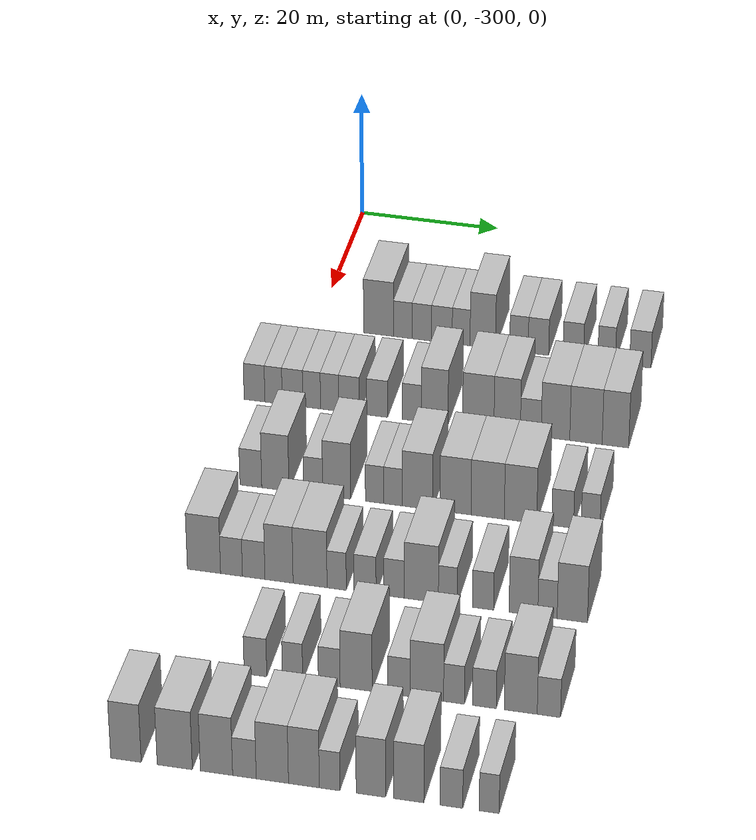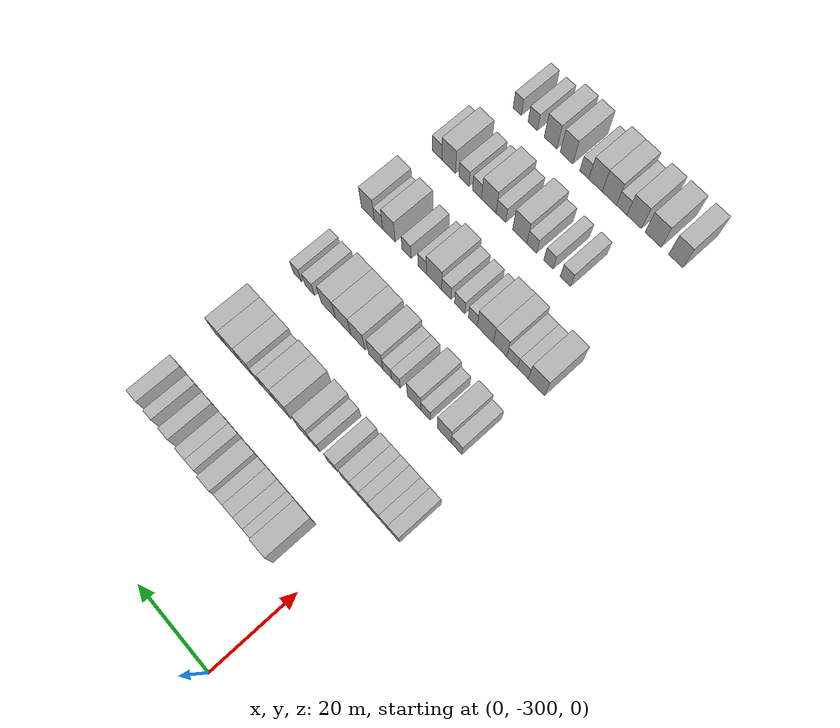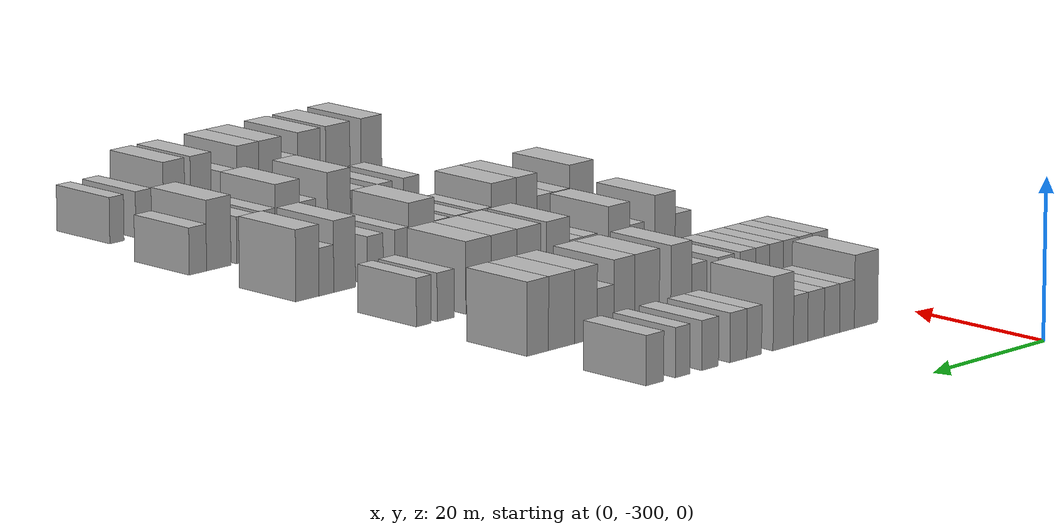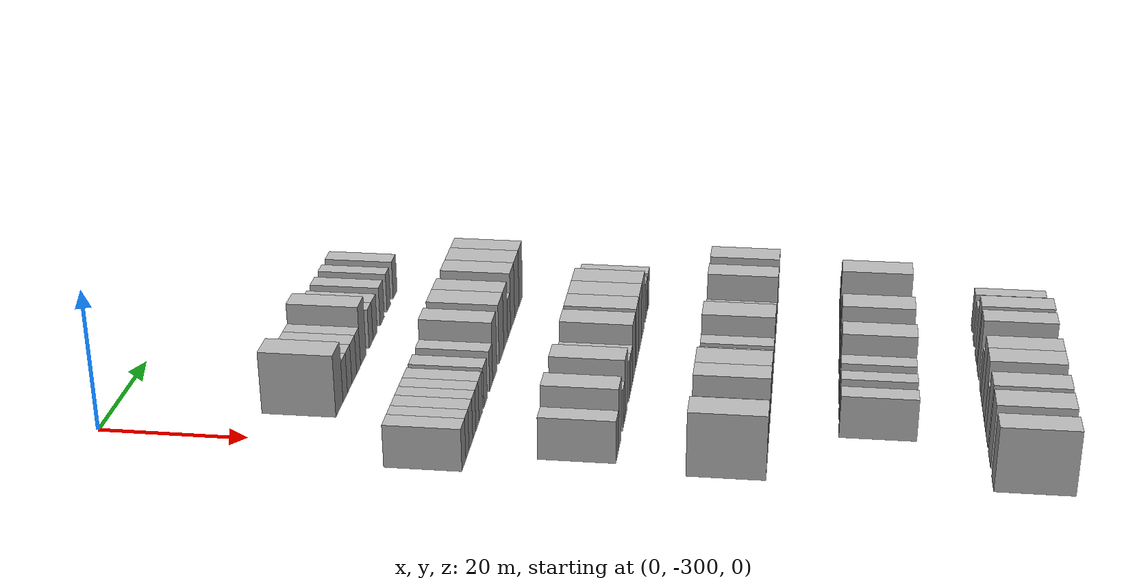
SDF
<sdf version="1.6">
 <world name="default">
  <model name="building_11">
   <static>1</static>
   <pose>25.0000 -291.0103 0 0.000000 0.000000 0.000000</pose>
   <link name="link">
    <pose>0 0 4.50 0 0 0</pose>
    <collision name="collision"><geometry><box><size>10.0000 4.2477 9.0000</size></box></geometry></collision>
    <visual name="visual">
     <cast_shadows>0</cast_shadows>
     <geometry><box><size>10.0000 4.2477 9.0000</size></box></geometry>
     <material>
      <script>
       <uri>model://HANNAS_wall/materials/scripts</uri>
       <uri>model://HANNAS_wall/materials/textures</uri>
       <name>vrc/HANNAS_wall</name>
      </script>
     </material>
    </visual>
   </link>
  </model>
  <model name="building_12">
   <static>1</static>
   <pose>25.0000 -287.5518 0 0.000000 0.000000 0.000000</pose>
   <link name="link">
    <pose>0 0 3.00 0 0 0</pose>
    <collision name="collision"><geometry><box><size>10.0000 2.6692 6.0000</size></box></geometry></collision>
    <visual name="visual">
     <cast_shadows>0</cast_shadows>
     <geometry><box><size>10.0000 2.6692 6.0000</size></box></geometry>
     <material>
      <script>
       <uri>model://HANNAS_wall/materials/scripts</uri>
       <uri>model://HANNAS_wall/materials/textures</uri>
       <name>vrc/HANNAS_wall</name>
      </script>
     </material>
    </visual>
   </link>
  </model>
  <model name="building_13">
   <static>1</static>
   <pose>25.0000 -284.8402 0 0.000000 0.000000 0.000000</pose>
   <link name="link">
    <pose>0 0 3.00 0 0 0</pose>
    <collision name="collision"><geometry><box><size>10.0000 2.7540 6.0000</size></box></geometry></collision>
    <visual name="visual">
     <cast_shadows>0</cast_shadows>
     <geometry><box><size>10.0000 2.7540 6.0000</size></box></geometry>
     <material>
      <script>
       <uri>model://HANNAS_wall/materials/scripts</uri>
       <uri>model://HANNAS_wall/materials/textures</uri>
       <name>vrc/HANNAS_wall</name>
      </script>
     </material>
    </visual>
   </link>
  </model>
  <model name="building_14">
   <static>1</static>
   <pose>25.0000 -281.9950 0 0.000000 0.000000 0.000000</pose>
   <link name="link">
    <pose>0 0 3.00 0 0 0</pose>
    <collision name="collision"><geometry><box><size>10.0000 2.9364 6.0000</size></box></geometry></collision>
    <visual name="visual">
     <cast_shadows>0</cast_shadows>
     <geometry><box><size>10.0000 2.9364 6.0000</size></box></geometry>
     <material>
      <script>
       <uri>model://HANNAS_wall/materials/scripts</uri>
       <uri>model://HANNAS_wall/materials/textures</uri>
       <name>vrc/HANNAS_wall</name>
      </script>
     </material>
    </visual>
   </link>
  </model>
  <model name="building_15">
   <static>1</static>
   <pose>25.0000 -279.2619 0 0.000000 0.000000 0.000000</pose>
   <link name="link">
    <pose>0 0 3.00 0 0 0</pose>
    <collision name="collision"><geometry><box><size>10.0000 2.5298 6.0000</size></box></geometry></collision>
    <visual name="visual">
     <cast_shadows>0</cast_shadows>
     <geometry><box><size>10.0000 2.5298 6.0000</size></box></geometry>
     <material>
      <script>
       <uri>model://HANNAS_wall/materials/scripts</uri>
       <uri>model://HANNAS_wall/materials/textures</uri>
       <name>vrc/HANNAS_wall</name>
      </script>
     </material>
    </visual>
   </link>
  </model>
  <model name="building_16">
   <static>1</static>
   <pose>25.0000 -276.1931 0 0.000000 0.000000 0.000000</pose>
   <link name="link">
    <pose>0 0 4.50 0 0 0</pose>
    <collision name="collision"><geometry><box><size>10.0000 3.6077 9.0000</size></box></geometry></collision>
    <visual name="visual">
     <cast_shadows>0</cast_shadows>
     <geometry><box><size>10.0000 3.6077 9.0000</size></box></geometry>
     <material>
      <script>
       <uri>model://HANNAS_wall/materials/scripts</uri>
       <uri>model://HANNAS_wall/materials/textures</uri>
       <name>vrc/HANNAS_wall</name>
      </script>
     </material>
    </visual>
   </link>
  </model>
  <model name="building_17">
   <static>1</static>
   <pose>25.0000 -271.0863 0 0.000000 0.000000 0.000000</pose>
   <link name="link">
    <pose>0 0 3.00 0 0 0</pose>
    <collision name="collision"><geometry><box><size>10.0000 2.6060 6.0000</size></box></geometry></collision>
    <visual name="visual">
     <cast_shadows>0</cast_shadows>
     <geometry><box><size>10.0000 2.6060 6.0000</size></box></geometry>
     <material>
      <script>
       <uri>model://HANNAS_wall/materials/scripts</uri>
       <uri>model://HANNAS_wall/materials/textures</uri>
       <name>vrc/HANNAS_wall</name>
      </script>
     </material>
    </visual>
   </link>
  </model>
  <model name="building_18">
   <static>1</static>
   <pose>25.0000 -268.3383 0 0.000000 0.000000 0.000000</pose>
   <link name="link">
    <pose>0 0 3.00 0 0 0</pose>
    <collision name="collision"><geometry><box><size>10.0000 2.8900 6.0000</size></box></geometry></collision>
    <visual name="visual">
     <cast_shadows>0</cast_shadows>
     <geometry><box><size>10.0000 2.8900 6.0000</size></box></geometry>
     <material>
      <script>
       <uri>model://HANNAS_wall/materials/scripts</uri>
       <uri>model://HANNAS_wall/materials/textures</uri>
       <name>vrc/HANNAS_wall</name>
      </script>
     </material>
    </visual>
   </link>
  </model>
  <model name="building_19">
   <static>1</static>
   <pose>25.0000 -263.4455 0 0.000000 0.000000 0.000000</pose>
   <link name="link">
    <pose>0 0 3.00 0 0 0</pose>
    <collision name="collision"><geometry><box><size>10.0000 2.8955 6.0000</size></box></geometry></collision>
    <visual name="visual">
     <cast_shadows>0</cast_shadows>
     <geometry><box><size>10.0000 2.8955 6.0000</size></box></geometry>
     <material>
      <script>
       <uri>model://HANNAS_wall/materials/scripts</uri>
       <uri>model://HANNAS_wall/materials/textures</uri>
       <name>vrc/HANNAS_wall</name>
      </script>
     </material>
    </visual>
   </link>
  </model>
  <model name="building_20">
   <static>1</static>
   <pose>25.0000 -258.7673 0 0.000000 0.000000 0.000000</pose>
   <link name="link">
    <pose>0 0 3.00 0 0 0</pose>
    <collision name="collision"><geometry><box><size>10.0000 2.4609 6.0000</size></box></geometry></collision>
    <visual name="visual">
     <cast_shadows>0</cast_shadows>
     <geometry><box><size>10.0000 2.4609 6.0000</size></box></geometry>
     <material>
      <script>
       <uri>model://HANNAS_wall/materials/scripts</uri>
       <uri>model://HANNAS_wall/materials/textures</uri>
       <name>vrc/HANNAS_wall</name>
      </script>
     </material>
    </visual>
   </link>
  </model>
  <model name="building_21">
   <static>1</static>
   <pose>25.0000 -254.0529 0 0.000000 0.000000 0.000000</pose>
   <link name="link">
    <pose>0 0 3.00 0 0 0</pose>
    <collision name="collision"><geometry><box><size>10.0000 2.9681 6.0000</size></box></geometry></collision>
    <visual name="visual">
     <cast_shadows>0</cast_shadows>
     <geometry><box><size>10.0000 2.9681 6.0000</size></box></geometry>
     <material>
      <script>
       <uri>model://HANNAS_wall/materials/scripts</uri>
       <uri>model://HANNAS_wall/materials/textures</uri>
       <name>vrc/HANNAS_wall</name>
      </script>
     </material>
    </visual>
   </link>
  </model>
  <model name="building_180">
   <static>1</static>
   <pose>44.0000 -304.1042 0 0.000000 0.000000 0.000000</pose>
   <link name="link">
    <pose>0 0 3.00 0 0 0</pose>
    <collision name="collision"><geometry><box><size>10.0000 2.9142 6.0000</size></box></geometry></collision>
    <visual name="visual">
     <cast_shadows>0</cast_shadows>
     <geometry><box><size>10.0000 2.9142 6.0000</size></box></geometry>
     <material>
      <script>
       <uri>model://HANNAS_wall/materials/scripts</uri>
       <uri>model://HANNAS_wall/materials/textures</uri>
       <name>vrc/HANNAS_wall</name>
      </script>
     </material>
    </visual>
   </link>
  </model>
  <model name="building_181">
   <static>1</static>
   <pose>44.0000 -301.4362 0 0.000000 0.000000 0.000000</pose>
   <link name="link">
    <pose>0 0 3.00 0 0 0</pose>
    <collision name="collision"><geometry><box><size>10.0000 2.4218 6.0000</size></box></geometry></collision>
    <visual name="visual">
     <cast_shadows>0</cast_shadows>
     <geometry><box><size>10.0000 2.4218 6.0000</size></box></geometry>
     <material>
      <script>
       <uri>model://HANNAS_wall/materials/scripts</uri>
       <uri>model://HANNAS_wall/materials/textures</uri>
       <name>vrc/HANNAS_wall</name>
      </script>
     </material>
    </visual>
   </link>
  </model>
  <model name="building_182">
   <static>1</static>
   <pose>44.0000 -298.7825 0 0.000000 0.000000 0.000000</pose>
   <link name="link">
    <pose>0 0 3.00 0 0 0</pose>
    <collision name="collision"><geometry><box><size>10.0000 2.8854 6.0000</size></box></geometry></collision>
    <visual name="visual">
     <cast_shadows>0</cast_shadows>
     <geometry><box><size>10.0000 2.8854 6.0000</size></box></geometry>
     <material>
      <script>
       <uri>model://HANNAS_wall/materials/scripts</uri>
       <uri>model://HANNAS_wall/materials/textures</uri>
       <name>vrc/HANNAS_wall</name>
      </script>
     </material>
    </visual>
   </link>
  </model>
  <model name="building_183">
   <static>1</static>
   <pose>44.0000 -296.1023 0 0.000000 0.000000 0.000000</pose>
   <link name="link">
    <pose>0 0 3.00 0 0 0</pose>
    <collision name="collision"><geometry><box><size>10.0000 2.4749 6.0000</size></box></geometry></collision>
    <visual name="visual">
     <cast_shadows>0</cast_shadows>
     <geometry><box><size>10.0000 2.4749 6.0000</size></box></geometry>
     <material>
      <script>
       <uri>model://HANNAS_wall/materials/scripts</uri>
       <uri>model://HANNAS_wall/materials/textures</uri>
       <name>vrc/HANNAS_wall</name>
      </script>
     </material>
    </visual>
   </link>
  </model>
  <model name="building_184">
   <static>1</static>
   <pose>44.0000 -293.5985 0 0.000000 0.000000 0.000000</pose>
   <link name="link">
    <pose>0 0 3.00 0 0 0</pose>
    <collision name="collision"><geometry><box><size>10.0000 2.5328 6.0000</size></box></geometry></collision>
    <visual name="visual">
     <cast_shadows>0</cast_shadows>
     <geometry><box><size>10.0000 2.5328 6.0000</size></box></geometry>
     <material>
      <script>
       <uri>model://HANNAS_wall/materials/scripts</uri>
       <uri>model://HANNAS_wall/materials/textures</uri>
       <name>vrc/HANNAS_wall</name>
      </script>
     </material>
    </visual>
   </link>
  </model>
  <model name="building_185">
   <static>1</static>
   <pose>44.0000 -290.8913 0 0.000000 0.000000 0.000000</pose>
   <link name="link">
    <pose>0 0 3.00 0 0 0</pose>
    <collision name="collision"><geometry><box><size>10.0000 2.8815 6.0000</size></box></geometry></collision>
    <visual name="visual">
     <cast_shadows>0</cast_shadows>
     <geometry><box><size>10.0000 2.8815 6.0000</size></box></geometry>
     <material>
      <script>
       <uri>model://HANNAS_wall/materials/scripts</uri>
       <uri>model://HANNAS_wall/materials/textures</uri>
       <name>vrc/HANNAS_wall</name>
      </script>
     </material>
    </visual>
   </link>
  </model>
  <model name="building_186">
   <static>1</static>
   <pose>44.0000 -286.9854 0 0.000000 0.000000 0.000000</pose>
   <link name="link">
    <pose>0 0 3.00 0 0 0</pose>
    <collision name="collision"><geometry><box><size>10.0000 2.9305 6.0000</size></box></geometry></collision>
    <visual name="visual">
     <cast_shadows>0</cast_shadows>
     <geometry><box><size>10.0000 2.9305 6.0000</size></box></geometry>
     <material>
      <script>
       <uri>model://HANNAS_wall/materials/scripts</uri>
       <uri>model://HANNAS_wall/materials/textures</uri>
       <name>vrc/HANNAS_wall</name>
      </script>
     </material>
    </visual>
   </link>
  </model>
  <model name="building_187">
   <static>1</static>
   <pose>44.0000 -282.1990 0 0.000000 0.000000 0.000000</pose>
   <link name="link">
    <pose>0 0 3.00 0 0 0</pose>
    <collision name="collision"><geometry><box><size>10.0000 2.6423 6.0000</size></box></geometry></collision>
    <visual name="visual">
     <cast_shadows>0</cast_shadows>
     <geometry><box><size>10.0000 2.6423 6.0000</size></box></geometry>
     <material>
      <script>
       <uri>model://HANNAS_wall/materials/scripts</uri>
       <uri>model://HANNAS_wall/materials/textures</uri>
       <name>vrc/HANNAS_wall</name>
      </script>
     </material>
    </visual>
   </link>
  </model>
  <model name="building_188">
   <static>1</static>
   <pose>44.0000 -279.0256 0 0.000000 0.000000 0.000000</pose>
   <link name="link">
    <pose>0 0 4.50 0 0 0</pose>
    <collision name="collision"><geometry><box><size>10.0000 3.7047 9.0000</size></box></geometry></collision>
    <visual name="visual">
     <cast_shadows>0</cast_shadows>
     <geometry><box><size>10.0000 3.7047 9.0000</size></box></geometry>
     <material>
      <script>
       <uri>model://HANNAS_wall/materials/scripts</uri>
       <uri>model://HANNAS_wall/materials/textures</uri>
       <name>vrc/HANNAS_wall</name>
      </script>
     </material>
    </visual>
   </link>
  </model>
  <model name="building_189">
   <static>1</static>
   <pose>44.0000 -273.0197 0 0.000000 0.000000 0.000000</pose>
   <link name="link">
    <pose>0 0 4.50 0 0 0</pose>
    <collision name="collision"><geometry><box><size>10.0000 4.3072 9.0000</size></box></geometry></collision>
    <visual name="visual">
     <cast_shadows>0</cast_shadows>
     <geometry><box><size>10.0000 4.3072 9.0000</size></box></geometry>
     <material>
      <script>
       <uri>model://HANNAS_wall/materials/scripts</uri>
       <uri>model://HANNAS_wall/materials/textures</uri>
       <name>vrc/HANNAS_wall</name>
      </script>
     </material>
    </visual>
   </link>
  </model>
  <model name="building_190">
   <static>1</static>
   <pose>44.0000 -269.0513 0 0.000000 0.000000 0.000000</pose>
   <link name="link">
    <pose>0 0 4.50 0 0 0</pose>
    <collision name="collision"><geometry><box><size>10.0000 3.6296 9.0000</size></box></geometry></collision>
    <visual name="visual">
     <cast_shadows>0</cast_shadows>
     <geometry><box><size>10.0000 3.6296 9.0000</size></box></geometry>
     <material>
      <script>
       <uri>model://HANNAS_wall/materials/scripts</uri>
       <uri>model://HANNAS_wall/materials/textures</uri>
       <name>vrc/HANNAS_wall</name>
      </script>
     </material>
    </visual>
   </link>
  </model>
  <model name="building_191">
   <static>1</static>
   <pose>44.0000 -265.8133 0 0.000000 0.000000 0.000000</pose>
   <link name="link">
    <pose>0 0 3.00 0 0 0</pose>
    <collision name="collision"><geometry><box><size>10.0000 2.8464 6.0000</size></box></geometry></collision>
    <visual name="visual">
     <cast_shadows>0</cast_shadows>
     <geometry><box><size>10.0000 2.8464 6.0000</size></box></geometry>
     <material>
      <script>
       <uri>model://HANNAS_wall/materials/scripts</uri>
       <uri>model://HANNAS_wall/materials/textures</uri>
       <name>vrc/HANNAS_wall</name>
      </script>
     </material>
    </visual>
   </link>
  </model>
  <model name="building_192">
   <static>1</static>
   <pose>44.0000 -262.4368 0 0.000000 0.000000 0.000000</pose>
   <link name="link">
    <pose>0 0 4.50 0 0 0</pose>
    <collision name="collision"><geometry><box><size>10.0000 3.9066 9.0000</size></box></geometry></collision>
    <visual name="visual">
     <cast_shadows>0</cast_shadows>
     <geometry><box><size>10.0000 3.9066 9.0000</size></box></geometry>
     <material>
      <script>
       <uri>model://HANNAS_wall/materials/scripts</uri>
       <uri>model://HANNAS_wall/materials/textures</uri>
       <name>vrc/HANNAS_wall</name>
      </script>
     </material>
    </visual>
   </link>
  </model>
  <model name="building_193">
   <static>1</static>
   <pose>44.0000 -258.2757 0 0.000000 0.000000 0.000000</pose>
   <link name="link">
    <pose>0 0 4.50 0 0 0</pose>
    <collision name="collision"><geometry><box><size>10.0000 4.4156 9.0000</size></box></geometry></collision>
    <visual name="visual">
     <cast_shadows>0</cast_shadows>
     <geometry><box><size>10.0000 4.4156 9.0000</size></box></geometry>
     <material>
      <script>
       <uri>model://HANNAS_wall/materials/scripts</uri>
       <uri>model://HANNAS_wall/materials/textures</uri>
       <name>vrc/HANNAS_wall</name>
      </script>
     </material>
    </visual>
   </link>
  </model>
  <model name="building_194">
   <static>1</static>
   <pose>44.0000 -254.2604 0 0.000000 0.000000 0.000000</pose>
   <link name="link">
    <pose>0 0 4.50 0 0 0</pose>
    <collision name="collision"><geometry><box><size>10.0000 3.6151 9.0000</size></box></geometry></collision>
    <visual name="visual">
     <cast_shadows>0</cast_shadows>
     <geometry><box><size>10.0000 3.6151 9.0000</size></box></geometry>
     <material>
      <script>
       <uri>model://HANNAS_wall/materials/scripts</uri>
       <uri>model://HANNAS_wall/materials/textures</uri>
       <name>vrc/HANNAS_wall</name>
      </script>
     </material>
    </visual>
   </link>
  </model>
  <model name="building_359">
   <static>1</static>
   <pose>63.0000 -299.8979 0 0.000000 0.000000 0.000000</pose>
   <link name="link">
    <pose>0 0 3.00 0 0 0</pose>
    <collision name="collision"><geometry><box><size>10.0000 2.9735 6.0000</size></box></geometry></collision>
    <visual name="visual">
     <cast_shadows>0</cast_shadows>
     <geometry><box><size>10.0000 2.9735 6.0000</size></box></geometry>
     <material>
      <script>
       <uri>model://HANNAS_wall/materials/scripts</uri>
       <uri>model://HANNAS_wall/materials/textures</uri>
       <name>vrc/HANNAS_wall</name>
      </script>
     </material>
    </visual>
   </link>
  </model>
  <model name="building_360">
   <static>1</static>
   <pose>63.0000 -296.5601 0 0.000000 0.000000 0.000000</pose>
   <link name="link">
    <pose>0 0 4.50 0 0 0</pose>
    <collision name="collision"><geometry><box><size>10.0000 3.7020 9.0000</size></box></geometry></collision>
    <visual name="visual">
     <cast_shadows>0</cast_shadows>
     <geometry><box><size>10.0000 3.7020 9.0000</size></box></geometry>
     <material>
      <script>
       <uri>model://HANNAS_wall/materials/scripts</uri>
       <uri>model://HANNAS_wall/materials/textures</uri>
       <name>vrc/HANNAS_wall</name>
      </script>
     </material>
    </visual>
   </link>
  </model>
  <model name="building_361">
   <static>1</static>
   <pose>63.0000 -291.4200 0 0.000000 0.000000 0.000000</pose>
   <link name="link">
    <pose>0 0 3.00 0 0 0</pose>
    <collision name="collision"><geometry><box><size>10.0000 2.5783 6.0000</size></box></geometry></collision>
    <visual name="visual">
     <cast_shadows>0</cast_shadows>
     <geometry><box><size>10.0000 2.5783 6.0000</size></box></geometry>
     <material>
      <script>
       <uri>model://HANNAS_wall/materials/scripts</uri>
       <uri>model://HANNAS_wall/materials/textures</uri>
       <name>vrc/HANNAS_wall</name>
      </script>
     </material>
    </visual>
   </link>
  </model>
  <model name="building_362">
   <static>1</static>
   <pose>63.0000 -288.2430 0 0.000000 0.000000 0.000000</pose>
   <link name="link">
    <pose>0 0 4.50 0 0 0</pose>
    <collision name="collision"><geometry><box><size>10.0000 3.7756 9.0000</size></box></geometry></collision>
    <visual name="visual">
     <cast_shadows>0</cast_shadows>
     <geometry><box><size>10.0000 3.7756 9.0000</size></box></geometry>
     <material>
      <script>
       <uri>model://HANNAS_wall/materials/scripts</uri>
       <uri>model://HANNAS_wall/materials/textures</uri>
       <name>vrc/HANNAS_wall</name>
      </script>
     </material>
    </visual>
   </link>
  </model>
  <model name="building_363">
   <static>1</static>
   <pose>63.0000 -283.1217 0 0.000000 0.000000 0.000000</pose>
   <link name="link">
    <pose>0 0 3.00 0 0 0</pose>
    <collision name="collision"><geometry><box><size>10.0000 2.4671 6.0000</size></box></geometry></collision>
    <visual name="visual">
     <cast_shadows>0</cast_shadows>
     <geometry><box><size>10.0000 2.4671 6.0000</size></box></geometry>
     <material>
      <script>
       <uri>model://HANNAS_wall/materials/scripts</uri>
       <uri>model://HANNAS_wall/materials/textures</uri>
       <name>vrc/HANNAS_wall</name>
      </script>
     </material>
    </visual>
   </link>
  </model>
  <model name="building_364">
   <static>1</static>
   <pose>63.0000 -280.6571 0 0.000000 0.000000 0.000000</pose>
   <link name="link">
    <pose>0 0 3.00 0 0 0</pose>
    <collision name="collision"><geometry><box><size>10.0000 2.4621 6.0000</size></box></geometry></collision>
    <visual name="visual">
     <cast_shadows>0</cast_shadows>
     <geometry><box><size>10.0000 2.4621 6.0000</size></box></geometry>
     <material>
      <script>
       <uri>model://HANNAS_wall/materials/scripts</uri>
       <uri>model://HANNAS_wall/materials/textures</uri>
       <name>vrc/HANNAS_wall</name>
      </script>
     </material>
    </visual>
   </link>
  </model>
  <model name="building_365">
   <static>1</static>
   <pose>63.0000 -277.3743 0 0.000000 0.000000 0.000000</pose>
   <link name="link">
    <pose>0 0 4.50 0 0 0</pose>
    <collision name="collision"><geometry><box><size>10.0000 4.1034 9.0000</size></box></geometry></collision>
    <visual name="visual">
     <cast_shadows>0</cast_shadows>
     <geometry><box><size>10.0000 4.1034 9.0000</size></box></geometry>
     <material>
      <script>
       <uri>model://HANNAS_wall/materials/scripts</uri>
       <uri>model://HANNAS_wall/materials/textures</uri>
       <name>vrc/HANNAS_wall</name>
      </script>
     </material>
    </visual>
   </link>
  </model>
  <model name="building_366">
   <static>1</static>
   <pose>63.0000 -272.2488 0 0.000000 0.000000 0.000000</pose>
   <link name="link">
    <pose>0 0 4.50 0 0 0</pose>
    <collision name="collision"><geometry><box><size>10.0000 4.1475 9.0000</size></box></geometry></collision>
    <visual name="visual">
     <cast_shadows>0</cast_shadows>
     <geometry><box><size>10.0000 4.1475 9.0000</size></box></geometry>
     <material>
      <script>
       <uri>model://HANNAS_wall/materials/scripts</uri>
       <uri>model://HANNAS_wall/materials/textures</uri>
       <name>vrc/HANNAS_wall</name>
      </script>
     </material>
    </visual>
   </link>
  </model>
  <model name="building_367">
   <static>1</static>
   <pose>63.0000 -267.9529 0 0.000000 0.000000 0.000000</pose>
   <link name="link">
    <pose>0 0 4.50 0 0 0</pose>
    <collision name="collision"><geometry><box><size>10.0000 4.4445 9.0000</size></box></geometry></collision>
    <visual name="visual">
     <cast_shadows>0</cast_shadows>
     <geometry><box><size>10.0000 4.4445 9.0000</size></box></geometry>
     <material>
      <script>
       <uri>model://HANNAS_wall/materials/scripts</uri>
       <uri>model://HANNAS_wall/materials/textures</uri>
       <name>vrc/HANNAS_wall</name>
      </script>
     </material>
    </visual>
   </link>
  </model>
  <model name="building_368">
   <static>1</static>
   <pose>63.0000 -263.5720 0 0.000000 0.000000 0.000000</pose>
   <link name="link">
    <pose>0 0 4.50 0 0 0</pose>
    <collision name="collision"><geometry><box><size>10.0000 4.3172 9.0000</size></box></geometry></collision>
    <visual name="visual">
     <cast_shadows>0</cast_shadows>
     <geometry><box><size>10.0000 4.3172 9.0000</size></box></geometry>
     <material>
      <script>
       <uri>model://HANNAS_wall/materials/scripts</uri>
       <uri>model://HANNAS_wall/materials/textures</uri>
       <name>vrc/HANNAS_wall</name>
      </script>
     </material>
    </visual>
   </link>
  </model>
  <model name="building_369">
   <static>1</static>
   <pose>63.0000 -257.9683 0 0.000000 0.000000 0.000000</pose>
   <link name="link">
    <pose>0 0 3.00 0 0 0</pose>
    <collision name="collision"><geometry><box><size>10.0000 2.8901 6.0000</size></box></geometry></collision>
    <visual name="visual">
     <cast_shadows>0</cast_shadows>
     <geometry><box><size>10.0000 2.8901 6.0000</size></box></geometry>
     <material>
      <script>
       <uri>model://HANNAS_wall/materials/scripts</uri>
       <uri>model://HANNAS_wall/materials/textures</uri>
       <name>vrc/HANNAS_wall</name>
      </script>
     </material>
    </visual>
   </link>
  </model>
  <model name="building_370">
   <static>1</static>
   <pose>63.0000 -254.2747 0 0.000000 0.000000 0.000000</pose>
   <link name="link">
    <pose>0 0 3.00 0 0 0</pose>
    <collision name="collision"><geometry><box><size>10.0000 2.4971 6.0000</size></box></geometry></collision>
    <visual name="visual">
     <cast_shadows>0</cast_shadows>
     <geometry><box><size>10.0000 2.4971 6.0000</size></box></geometry>
     <material>
      <script>
       <uri>model://HANNAS_wall/materials/scripts</uri>
       <uri>model://HANNAS_wall/materials/textures</uri>
       <name>vrc/HANNAS_wall</name>
      </script>
     </material>
    </visual>
   </link>
  </model>
  <model name="building_532">
   <static>1</static>
   <pose>82.0000 -301.3846 0 0.000000 0.000000 0.000000</pose>
   <link name="link">
    <pose>0 0 4.50 0 0 0</pose>
    <collision name="collision"><geometry><box><size>10.0000 4.4045 9.0000</size></box></geometry></collision>
    <visual name="visual">
     <cast_shadows>0</cast_shadows>
     <geometry><box><size>10.0000 4.4045 9.0000</size></box></geometry>
     <material>
      <script>
       <uri>model://HANNAS_wall/materials/scripts</uri>
       <uri>model://HANNAS_wall/materials/textures</uri>
       <name>vrc/HANNAS_wall</name>
      </script>
     </material>
    </visual>
   </link>
  </model>
  <model name="building_533">
   <static>1</static>
   <pose>82.0000 -297.7327 0 0.000000 0.000000 0.000000</pose>
   <link name="link">
    <pose>0 0 3.00 0 0 0</pose>
    <collision name="collision"><geometry><box><size>10.0000 2.8993 6.0000</size></box></geometry></collision>
    <visual name="visual">
     <cast_shadows>0</cast_shadows>
     <geometry><box><size>10.0000 2.8993 6.0000</size></box></geometry>
     <material>
      <script>
       <uri>model://HANNAS_wall/materials/scripts</uri>
       <uri>model://HANNAS_wall/materials/textures</uri>
       <name>vrc/HANNAS_wall</name>
      </script>
     </material>
    </visual>
   </link>
  </model>
  <model name="building_534">
   <static>1</static>
   <pose>82.0000 -294.7933 0 0.000000 0.000000 0.000000</pose>
   <link name="link">
    <pose>0 0 3.00 0 0 0</pose>
    <collision name="collision"><geometry><box><size>10.0000 2.9793 6.0000</size></box></geometry></collision>
    <visual name="visual">
     <cast_shadows>0</cast_shadows>
     <geometry><box><size>10.0000 2.9793 6.0000</size></box></geometry>
     <material>
      <script>
       <uri>model://HANNAS_wall/materials/scripts</uri>
       <uri>model://HANNAS_wall/materials/textures</uri>
       <name>vrc/HANNAS_wall</name>
      </script>
     </material>
    </visual>
   </link>
  </model>
  <model name="building_535">
   <static>1</static>
   <pose>82.0000 -291.4497 0 0.000000 0.000000 0.000000</pose>
   <link name="link">
    <pose>0 0 4.50 0 0 0</pose>
    <collision name="collision"><geometry><box><size>10.0000 3.7079 9.0000</size></box></geometry></collision>
    <visual name="visual">
     <cast_shadows>0</cast_shadows>
     <geometry><box><size>10.0000 3.7079 9.0000</size></box></geometry>
     <material>
      <script>
       <uri>model://HANNAS_wall/materials/scripts</uri>
       <uri>model://HANNAS_wall/materials/textures</uri>
       <name>vrc/HANNAS_wall</name>
      </script>
     </material>
    </visual>
   </link>
  </model>
  <model name="building_536">
   <static>1</static>
   <pose>82.0000 -287.3604 0 0.000000 0.000000 0.000000</pose>
   <link name="link">
    <pose>0 0 4.50 0 0 0</pose>
    <collision name="collision"><geometry><box><size>10.0000 4.4708 9.0000</size></box></geometry></collision>
    <visual name="visual">
     <cast_shadows>0</cast_shadows>
     <geometry><box><size>10.0000 4.4708 9.0000</size></box></geometry>
     <material>
      <script>
       <uri>model://HANNAS_wall/materials/scripts</uri>
       <uri>model://HANNAS_wall/materials/textures</uri>
       <name>vrc/HANNAS_wall</name>
      </script>
     </material>
    </visual>
   </link>
  </model>
  <model name="building_537">
   <static>1</static>
   <pose>82.0000 -283.8622 0 0.000000 0.000000 0.000000</pose>
   <link name="link">
    <pose>0 0 3.00 0 0 0</pose>
    <collision name="collision"><geometry><box><size>10.0000 2.5257 6.0000</size></box></geometry></collision>
    <visual name="visual">
     <cast_shadows>0</cast_shadows>
     <geometry><box><size>10.0000 2.5257 6.0000</size></box></geometry>
     <material>
      <script>
       <uri>model://HANNAS_wall/materials/scripts</uri>
       <uri>model://HANNAS_wall/materials/textures</uri>
       <name>vrc/HANNAS_wall</name>
      </script>
     </material>
    </visual>
   </link>
  </model>
  <model name="building_538">
   <static>1</static>
   <pose>82.0000 -280.1498 0 0.000000 0.000000 0.000000</pose>
   <link name="link">
    <pose>0 0 3.00 0 0 0</pose>
    <collision name="collision"><geometry><box><size>10.0000 2.8990 6.0000</size></box></geometry></collision>
    <visual name="visual">
     <cast_shadows>0</cast_shadows>
     <geometry><box><size>10.0000 2.8990 6.0000</size></box></geometry>
     <material>
      <script>
       <uri>model://HANNAS_wall/materials/scripts</uri>
       <uri>model://HANNAS_wall/materials/textures</uri>
       <name>vrc/HANNAS_wall</name>
      </script>
     </material>
    </visual>
   </link>
  </model>
  <model name="building_539">
   <static>1</static>
   <pose>82.0000 -276.3429 0 0.000000 0.000000 0.000000</pose>
   <link name="link">
    <pose>0 0 3.00 0 0 0</pose>
    <collision name="collision"><geometry><box><size>10.0000 2.7148 6.0000</size></box></geometry></collision>
    <visual name="visual">
     <cast_shadows>0</cast_shadows>
     <geometry><box><size>10.0000 2.7148 6.0000</size></box></geometry>
     <material>
      <script>
       <uri>model://HANNAS_wall/materials/scripts</uri>
       <uri>model://HANNAS_wall/materials/textures</uri>
       <name>vrc/HANNAS_wall</name>
      </script>
     </material>
    </visual>
   </link>
  </model>
  <model name="building_540">
   <static>1</static>
   <pose>82.0000 -272.7804 0 0.000000 0.000000 0.000000</pose>
   <link name="link">
    <pose>0 0 4.50 0 0 0</pose>
    <collision name="collision"><geometry><box><size>10.0000 4.4103 9.0000</size></box></geometry></collision>
    <visual name="visual">
     <cast_shadows>0</cast_shadows>
     <geometry><box><size>10.0000 4.4103 9.0000</size></box></geometry>
     <material>
      <script>
       <uri>model://HANNAS_wall/materials/scripts</uri>
       <uri>model://HANNAS_wall/materials/textures</uri>
       <name>vrc/HANNAS_wall</name>
      </script>
     </material>
    </visual>
   </link>
  </model>
  <model name="building_541">
   <static>1</static>
   <pose>82.0000 -269.3614 0 0.000000 0.000000 0.000000</pose>
   <link name="link">
    <pose>0 0 3.00 0 0 0</pose>
    <collision name="collision"><geometry><box><size>10.0000 2.4276 6.0000</size></box></geometry></collision>
    <visual name="visual">
     <cast_shadows>0</cast_shadows>
     <geometry><box><size>10.0000 2.4276 6.0000</size></box></geometry>
     <material>
      <script>
       <uri>model://HANNAS_wall/materials/scripts</uri>
       <uri>model://HANNAS_wall/materials/textures</uri>
       <name>vrc/HANNAS_wall</name>
      </script>
     </material>
    </visual>
   </link>
  </model>
  <model name="building_542">
   <static>1</static>
   <pose>82.0000 -264.7761 0 0.000000 0.000000 0.000000</pose>
   <link name="link">
    <pose>0 0 3.00 0 0 0</pose>
    <collision name="collision"><geometry><box><size>10.0000 2.7431 6.0000</size></box></geometry></collision>
    <visual name="visual">
     <cast_shadows>0</cast_shadows>
     <geometry><box><size>10.0000 2.7431 6.0000</size></box></geometry>
     <material>
      <script>
       <uri>model://HANNAS_wall/materials/scripts</uri>
       <uri>model://HANNAS_wall/materials/textures</uri>
       <name>vrc/HANNAS_wall</name>
      </script>
     </material>
    </visual>
   </link>
  </model>
  <model name="building_543">
   <static>1</static>
   <pose>82.0000 -259.5483 0 0.000000 0.000000 0.000000</pose>
   <link name="link">
    <pose>0 0 4.50 0 0 0</pose>
    <collision name="collision"><geometry><box><size>10.0000 3.7125 9.0000</size></box></geometry></collision>
    <visual name="visual">
     <cast_shadows>0</cast_shadows>
     <geometry><box><size>10.0000 3.7125 9.0000</size></box></geometry>
     <material>
      <script>
       <uri>model://HANNAS_wall/materials/scripts</uri>
       <uri>model://HANNAS_wall/materials/textures</uri>
       <name>vrc/HANNAS_wall</name>
      </script>
     </material>
    </visual>
   </link>
  </model>
  <model name="building_544">
   <static>1</static>
   <pose>82.0000 -256.4485 0 0.000000 0.000000 0.000000</pose>
   <link name="link">
    <pose>0 0 3.00 0 0 0</pose>
    <collision name="collision"><geometry><box><size>10.0000 2.4871 6.0000</size></box></geometry></collision>
    <visual name="visual">
     <cast_shadows>0</cast_shadows>
     <geometry><box><size>10.0000 2.4871 6.0000</size></box></geometry>
     <material>
      <script>
       <uri>model://HANNAS_wall/materials/scripts</uri>
       <uri>model://HANNAS_wall/materials/textures</uri>
       <name>vrc/HANNAS_wall</name>
      </script>
     </material>
    </visual>
   </link>
  </model>
  <model name="building_545">
   <static>1</static>
   <pose>82.0000 -253.2517 0 0.000000 0.000000 0.000000</pose>
   <link name="link">
    <pose>0 0 4.50 0 0 0</pose>
    <collision name="collision"><geometry><box><size>10.0000 3.9064 9.0000</size></box></geometry></collision>
    <visual name="visual">
     <cast_shadows>0</cast_shadows>
     <geometry><box><size>10.0000 3.9064 9.0000</size></box></geometry>
     <material>
      <script>
       <uri>model://HANNAS_wall/materials/scripts</uri>
       <uri>model://HANNAS_wall/materials/textures</uri>
       <name>vrc/HANNAS_wall</name>
      </script>
     </material>
    </visual>
   </link>
  </model>
  <model name="building_688">
   <static>1</static>
   <pose>101.0000 -289.8553 0 0.000000 0.000000 0.000000</pose>
   <link name="link">
    <pose>0 0 3.00 0 0 0</pose>
    <collision name="collision"><geometry><box><size>10.0000 2.8961 6.0000</size></box></geometry></collision>
    <visual name="visual">
     <cast_shadows>0</cast_shadows>
     <geometry><box><size>10.0000 2.8961 6.0000</size></box></geometry>
     <material>
      <script>
       <uri>model://HANNAS_wall/materials/scripts</uri>
       <uri>model://HANNAS_wall/materials/textures</uri>
       <name>vrc/HANNAS_wall</name>
      </script>
     </material>
    </visual>
   </link>
  </model>
  <model name="building_689">
   <static>1</static>
   <pose>101.0000 -285.1106 0 0.000000 0.000000 0.000000</pose>
   <link name="link">
    <pose>0 0 3.00 0 0 0</pose>
    <collision name="collision"><geometry><box><size>10.0000 2.5931 6.0000</size></box></geometry></collision>
    <visual name="visual">
     <cast_shadows>0</cast_shadows>
     <geometry><box><size>10.0000 2.5931 6.0000</size></box></geometry>
     <material>
      <script>
       <uri>model://HANNAS_wall/materials/scripts</uri>
       <uri>model://HANNAS_wall/materials/textures</uri>
       <name>vrc/HANNAS_wall</name>
      </script>
     </material>
    </visual>
   </link>
  </model>
  <model name="building_690">
   <static>1</static>
   <pose>101.0000 -280.4289 0 0.000000 0.000000 0.000000</pose>
   <link name="link">
    <pose>0 0 3.00 0 0 0</pose>
    <collision name="collision"><geometry><box><size>10.0000 2.7704 6.0000</size></box></geometry></collision>
    <visual name="visual">
     <cast_shadows>0</cast_shadows>
     <geometry><box><size>10.0000 2.7704 6.0000</size></box></geometry>
     <material>
      <script>
       <uri>model://HANNAS_wall/materials/scripts</uri>
       <uri>model://HANNAS_wall/materials/textures</uri>
       <name>vrc/HANNAS_wall</name>
      </script>
     </material>
    </visual>
   </link>
  </model>
  <model name="building_691">
   <static>1</static>
   <pose>101.0000 -277.0115 0 0.000000 0.000000 0.000000</pose>
   <link name="link">
    <pose>0 0 4.50 0 0 0</pose>
    <collision name="collision"><geometry><box><size>10.0000 4.0643 9.0000</size></box></geometry></collision>
    <visual name="visual">
     <cast_shadows>0</cast_shadows>
     <geometry><box><size>10.0000 4.0643 9.0000</size></box></geometry>
     <material>
      <script>
       <uri>model://HANNAS_wall/materials/scripts</uri>
       <uri>model://HANNAS_wall/materials/textures</uri>
       <name>vrc/HANNAS_wall</name>
      </script>
     </material>
    </visual>
   </link>
  </model>
  <model name="building_692">
   <static>1</static>
   <pose>101.0000 -271.5797 0 0.000000 0.000000 0.000000</pose>
   <link name="link">
    <pose>0 0 3.00 0 0 0</pose>
    <collision name="collision"><geometry><box><size>10.0000 2.7992 6.0000</size></box></geometry></collision>
    <visual name="visual">
     <cast_shadows>0</cast_shadows>
     <geometry><box><size>10.0000 2.7992 6.0000</size></box></geometry>
     <material>
      <script>
       <uri>model://HANNAS_wall/materials/scripts</uri>
       <uri>model://HANNAS_wall/materials/textures</uri>
       <name>vrc/HANNAS_wall</name>
      </script>
     </material>
    </visual>
   </link>
  </model>
  <model name="building_693">
   <static>1</static>
   <pose>101.0000 -268.0603 0 0.000000 0.000000 0.000000</pose>
   <link name="link">
    <pose>0 0 4.50 0 0 0</pose>
    <collision name="collision"><geometry><box><size>10.0000 4.2397 9.0000</size></box></geometry></collision>
    <visual name="visual">
     <cast_shadows>0</cast_shadows>
     <geometry><box><size>10.0000 4.2397 9.0000</size></box></geometry>
     <material>
      <script>
       <uri>model://HANNAS_wall/materials/scripts</uri>
       <uri>model://HANNAS_wall/materials/textures</uri>
       <name>vrc/HANNAS_wall</name>
      </script>
     </material>
    </visual>
   </link>
  </model>
  <model name="building_694">
   <static>1</static>
   <pose>101.0000 -264.6189 0 0.000000 0.000000 0.000000</pose>
   <link name="link">
    <pose>0 0 3.00 0 0 0</pose>
    <collision name="collision"><geometry><box><size>10.0000 2.6430 6.0000</size></box></geometry></collision>
    <visual name="visual">
     <cast_shadows>0</cast_shadows>
     <geometry><box><size>10.0000 2.6430 6.0000</size></box></geometry>
     <material>
      <script>
       <uri>model://HANNAS_wall/materials/scripts</uri>
       <uri>model://HANNAS_wall/materials/textures</uri>
       <name>vrc/HANNAS_wall</name>
      </script>
     </material>
    </visual>
   </link>
  </model>
  <model name="building_695">
   <static>1</static>
   <pose>101.0000 -260.8044 0 0.000000 0.000000 0.000000</pose>
   <link name="link">
    <pose>0 0 3.00 0 0 0</pose>
    <collision name="collision"><geometry><box><size>10.0000 2.9860 6.0000</size></box></geometry></collision>
    <visual name="visual">
     <cast_shadows>0</cast_shadows>
     <geometry><box><size>10.0000 2.9860 6.0000</size></box></geometry>
     <material>
      <script>
       <uri>model://HANNAS_wall/materials/scripts</uri>
       <uri>model://HANNAS_wall/materials/textures</uri>
       <name>vrc/HANNAS_wall</name>
      </script>
     </material>
    </visual>
   </link>
  </model>
  <model name="building_696">
   <static>1</static>
   <pose>101.0000 -256.2482 0 0.000000 0.000000 0.000000</pose>
   <link name="link">
    <pose>0 0 4.50 0 0 0</pose>
    <collision name="collision"><geometry><box><size>10.0000 4.1264 9.0000</size></box></geometry></collision>
    <visual name="visual">
     <cast_shadows>0</cast_shadows>
     <geometry><box><size>10.0000 4.1264 9.0000</size></box></geometry>
     <material>
      <script>
       <uri>model://HANNAS_wall/materials/scripts</uri>
       <uri>model://HANNAS_wall/materials/textures</uri>
       <name>vrc/HANNAS_wall</name>
      </script>
     </material>
    </visual>
   </link>
  </model>
  <model name="building_697">
   <static>1</static>
   <pose>101.0000 -252.7267 0 0.000000 0.000000 0.000000</pose>
   <link name="link">
    <pose>0 0 3.00 0 0 0</pose>
    <collision name="collision"><geometry><box><size>10.0000 2.9165 6.0000</size></box></geometry></collision>
    <visual name="visual">
     <cast_shadows>0</cast_shadows>
     <geometry><box><size>10.0000 2.9165 6.0000</size></box></geometry>
     <material>
      <script>
       <uri>model://HANNAS_wall/materials/scripts</uri>
       <uri>model://HANNAS_wall/materials/textures</uri>
       <name>vrc/HANNAS_wall</name>
      </script>
     </material>
    </visual>
   </link>
  </model>
  <model name="building_854">
   <static>1</static>
   <pose>120.0000 -301.3200 0 0.000000 0.000000 0.000000</pose>
   <link name="link">
    <pose>0 0 4.50 0 0 0</pose>
    <collision name="collision"><geometry><box><size>10.0000 3.8256 9.0000</size></box></geometry></collision>
    <visual name="visual">
     <cast_shadows>0</cast_shadows>
     <geometry><box><size>10.0000 3.8256 9.0000</size></box></geometry>
     <material>
      <script>
       <uri>model://HANNAS_wall/materials/scripts</uri>
       <uri>model://HANNAS_wall/materials/textures</uri>
       <name>vrc/HANNAS_wall</name>
      </script>
     </material>
    </visual>
   </link>
  </model>
  <model name="building_855">
   <static>1</static>
   <pose>120.0000 -295.2077 0 0.000000 0.000000 0.000000</pose>
   <link name="link">
    <pose>0 0 4.50 0 0 0</pose>
    <collision name="collision"><geometry><box><size>10.0000 4.3990 9.0000</size></box></geometry></collision>
    <visual name="visual">
     <cast_shadows>0</cast_shadows>
     <geometry><box><size>10.0000 4.3990 9.0000</size></box></geometry>
     <material>
      <script>
       <uri>model://HANNAS_wall/materials/scripts</uri>
       <uri>model://HANNAS_wall/materials/textures</uri>
       <name>vrc/HANNAS_wall</name>
      </script>
     </material>
    </visual>
   </link>
  </model>
  <model name="building_856">
   <static>1</static>
   <pose>120.0000 -289.9982 0 0.000000 0.000000 0.000000</pose>
   <link name="link">
    <pose>0 0 4.50 0 0 0</pose>
    <collision name="collision"><geometry><box><size>10.0000 4.0200 9.0000</size></box></geometry></collision>
    <visual name="visual">
     <cast_shadows>0</cast_shadows>
     <geometry><box><size>10.0000 4.0200 9.0000</size></box></geometry>
     <material>
      <script>
       <uri>model://HANNAS_wall/materials/scripts</uri>
       <uri>model://HANNAS_wall/materials/textures</uri>
       <name>vrc/HANNAS_wall</name>
      </script>
     </material>
    </visual>
   </link>
  </model>
  <model name="building_857">
   <static>1</static>
   <pose>120.0000 -286.5228 0 0.000000 0.000000 0.000000</pose>
   <link name="link">
    <pose>0 0 3.00 0 0 0</pose>
    <collision name="collision"><geometry><box><size>10.0000 2.9307 6.0000</size></box></geometry></collision>
    <visual name="visual">
     <cast_shadows>0</cast_shadows>
     <geometry><box><size>10.0000 2.9307 6.0000</size></box></geometry>
     <material>
      <script>
       <uri>model://HANNAS_wall/materials/scripts</uri>
       <uri>model://HANNAS_wall/materials/textures</uri>
       <name>vrc/HANNAS_wall</name>
      </script>
     </material>
    </visual>
   </link>
  </model>
  <model name="building_858">
   <static>1</static>
   <pose>120.0000 -283.0556 0 0.000000 0.000000 0.000000</pose>
   <link name="link">
    <pose>0 0 4.50 0 0 0</pose>
    <collision name="collision"><geometry><box><size>10.0000 4.0038 9.0000</size></box></geometry></collision>
    <visual name="visual">
     <cast_shadows>0</cast_shadows>
     <geometry><box><size>10.0000 4.0038 9.0000</size></box></geometry>
     <material>
      <script>
       <uri>model://HANNAS_wall/materials/scripts</uri>
       <uri>model://HANNAS_wall/materials/textures</uri>
       <name>vrc/HANNAS_wall</name>
      </script>
     </material>
    </visual>
   </link>
  </model>
  <model name="building_859">
   <static>1</static>
   <pose>120.0000 -279.1473 0 0.000000 0.000000 0.000000</pose>
   <link name="link">
    <pose>0 0 4.50 0 0 0</pose>
    <collision name="collision"><geometry><box><size>10.0000 3.8127 9.0000</size></box></geometry></collision>
    <visual name="visual">
     <cast_shadows>0</cast_shadows>
     <geometry><box><size>10.0000 3.8127 9.0000</size></box></geometry>
     <material>
      <script>
       <uri>model://HANNAS_wall/materials/scripts</uri>
       <uri>model://HANNAS_wall/materials/textures</uri>
       <name>vrc/HANNAS_wall</name>
      </script>
     </material>
    </visual>
   </link>
  </model>
  <model name="building_860">
   <static>1</static>
   <pose>120.0000 -275.9726 0 0.000000 0.000000 0.000000</pose>
   <link name="link">
    <pose>0 0 3.00 0 0 0</pose>
    <collision name="collision"><geometry><box><size>10.0000 2.5368 6.0000</size></box></geometry></collision>
    <visual name="visual">
     <cast_shadows>0</cast_shadows>
     <geometry><box><size>10.0000 2.5368 6.0000</size></box></geometry>
     <material>
      <script>
       <uri>model://HANNAS_wall/materials/scripts</uri>
       <uri>model://HANNAS_wall/materials/textures</uri>
       <name>vrc/HANNAS_wall</name>
      </script>
     </material>
    </visual>
   </link>
  </model>
  <model name="building_861">
   <static>1</static>
   <pose>120.0000 -270.8967 0 0.000000 0.000000 0.000000</pose>
   <link name="link">
    <pose>0 0 4.50 0 0 0</pose>
    <collision name="collision"><geometry><box><size>10.0000 3.6149 9.0000</size></box></geometry></collision>
    <visual name="visual">
     <cast_shadows>0</cast_shadows>
     <geometry><box><size>10.0000 3.6149 9.0000</size></box></geometry>
     <material>
      <script>
       <uri>model://HANNAS_wall/materials/scripts</uri>
       <uri>model://HANNAS_wall/materials/textures</uri>
       <name>vrc/HANNAS_wall</name>
      </script>
     </material>
    </visual>
   </link>
  </model>
  <model name="building_862">
   <static>1</static>
   <pose>120.0000 -266.2482 0 0.000000 0.000000 0.000000</pose>
   <link name="link">
    <pose>0 0 4.50 0 0 0</pose>
    <collision name="collision"><geometry><box><size>10.0000 3.6819 9.0000</size></box></geometry></collision>
    <visual name="visual">
     <cast_shadows>0</cast_shadows>
     <geometry><box><size>10.0000 3.6819 9.0000</size></box></geometry>
     <material>
      <script>
       <uri>model://HANNAS_wall/materials/scripts</uri>
       <uri>model://HANNAS_wall/materials/textures</uri>
       <name>vrc/HANNAS_wall</name>
      </script>
     </material>
    </visual>
   </link>
  </model>
  <model name="building_863">
   <static>1</static>
   <pose>120.0000 -261.0278 0 0.000000 0.000000 0.000000</pose>
   <link name="link">
    <pose>0 0 3.00 0 0 0</pose>
    <collision name="collision"><geometry><box><size>10.0000 2.7590 6.0000</size></box></geometry></collision>
    <visual name="visual">
     <cast_shadows>0</cast_shadows>
     <geometry><box><size>10.0000 2.7590 6.0000</size></box></geometry>
     <material>
      <script>
       <uri>model://HANNAS_wall/materials/scripts</uri>
       <uri>model://HANNAS_wall/materials/textures</uri>
       <name>vrc/HANNAS_wall</name>
      </script>
     </material>
    </visual>
   </link>
  </model>
  <model name="building_864">
   <static>1</static>
   <pose>120.0000 -256.4341 0 0.000000 0.000000 0.000000</pose>
   <link name="link">
    <pose>0 0 3.00 0 0 0</pose>
    <collision name="collision"><geometry><box><size>10.0000 2.4283 6.0000</size></box></geometry></collision>
    <visual name="visual">
     <cast_shadows>0</cast_shadows>
     <geometry><box><size>10.0000 2.4283 6.0000</size></box></geometry>
     <material>
      <script>
       <uri>model://HANNAS_wall/materials/scripts</uri>
       <uri>model://HANNAS_wall/materials/textures</uri>
       <name>vrc/HANNAS_wall</name>
      </script>
     </material>
    </visual>
   </link>
  </model>
 </world>
</sdf>
